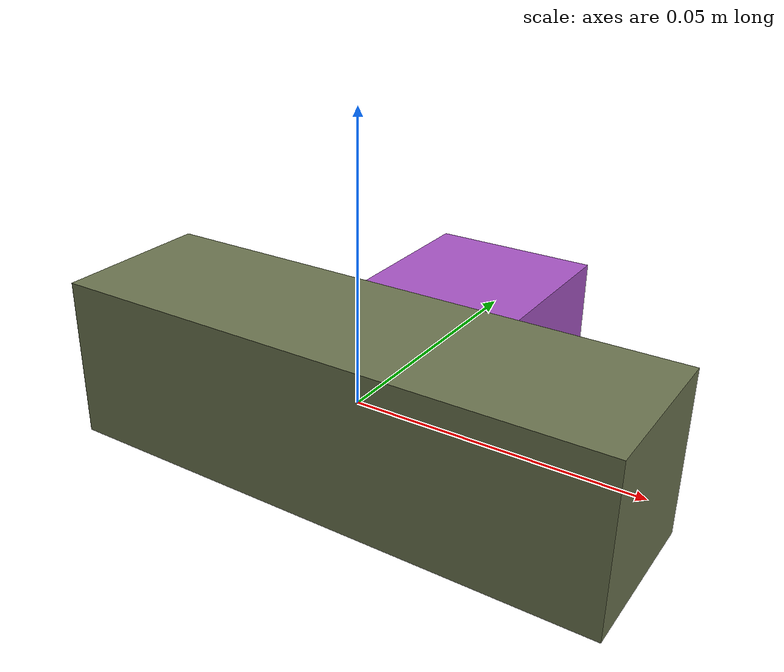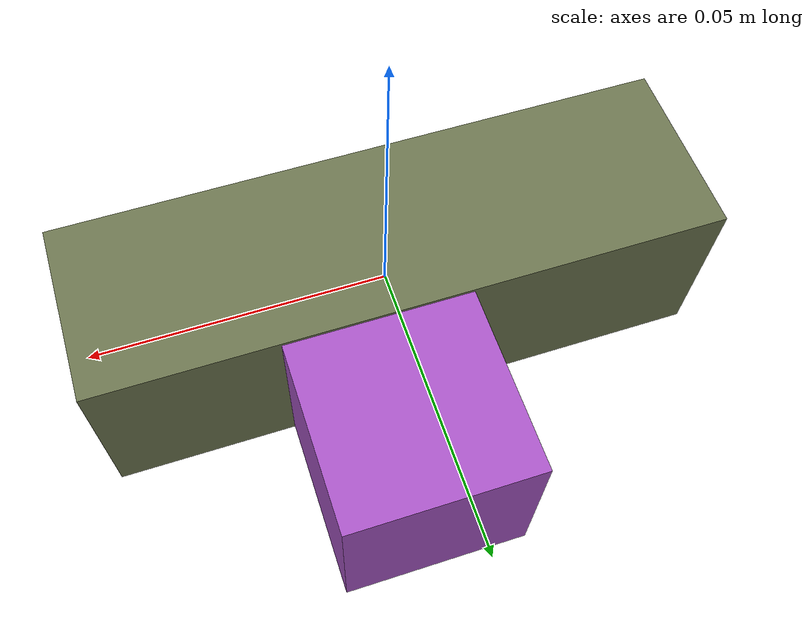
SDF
<sdf version="1.4"><world name="default"><model name="object0"><link name="link1"><pose>0 0 0 0 0 0</pose><inertial><pose>0 0 0 0 0 0</pose><mass>0.054769391162163686</mass><inertia><ixx>8.215408674324552e-06</ixx><ixy>0</ixy><iyy>5.105871808450779e-05</iyy><ixz>0</ixz><iyz>0</iyz><izz>5.105871808450779e-05</izz></inertia></inertial><visual name="link1_visual"><pose>0 0  0 0 0 0</pose><geometry><box><size>0.10142479844845127 0.03 0.03</size></box></geometry><material><diffuse>0.4227973276669756 0.45760830466075786 0.3120861003798621 1</diffuse></material></visual><collision><pose>0 0  0 0 0 0</pose><geometry><box><size>0.10142479844845127 0.03 0.03</size></box></geometry></collision></link><link name="link2"><pose>0.005895021901652385 0.0188371971240106 0 0 0 0</pose><inertial><pose>0 0 0 0 0 0</pose><mass>0.02810439903836862</mass><inertia><ixx>8.313518051638178e-06</ixx><ixy>0</ixy><iyy>4.077479893816647e-06</iyy><ixz>0</ixz><iyz>0</iyz><izz>8.451698013576824e-06</izz></inertia></inertial><visual name="link2_visual"><pose>0 0  0 0 0 0</pose><geometry><box><size>0.03 0.05204518340438633 0.028999999999999998</size></box></geometry><material><diffuse>0.6581784211040094 0.3349540181112117 0.7719213034793664 1</diffuse></material></visual><collision><pose>0 0  0 0 0 0</pose><geometry><box><size>0.03 0.05204518340438633 0.028999999999999998</size></box></geometry></collision></link><joint name="link_joint_0" type="fixed"><parent>link1</parent><child>link2</child><pose>0 0 0 0 0 0</pose><axis><xyz>0 0 1</xyz></axis></joint></model></world></sdf>
